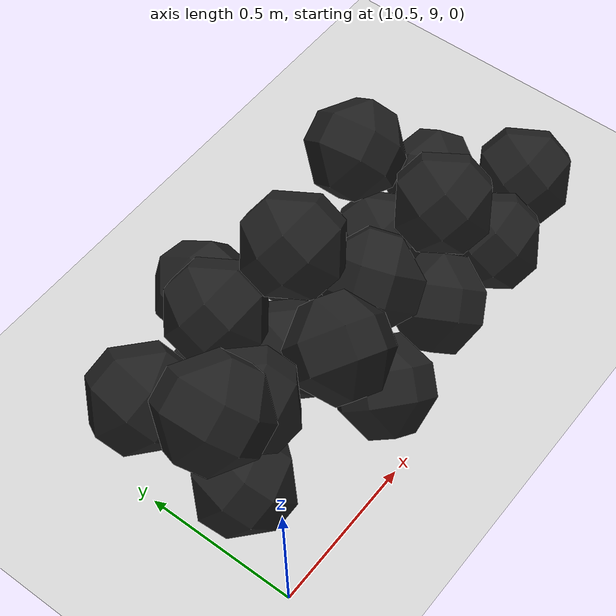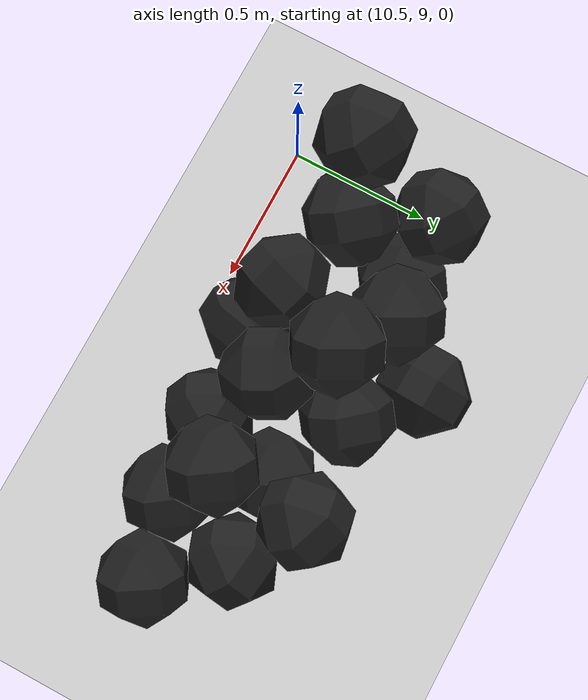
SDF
<sdf version="1.7">
 <world name="default">
  <model name="ground_plane">
   <static>1</static>
   <link name="link">
    <collision name="collision">
     <geometry><plane><normal>0 0 1</normal><size>100 100</size></plane></geometry>
     <surface><friction><ode><mu>100</mu><mu2>50</mu2></ode></friction></surface>
    </collision>
    <visual name="visual">
     <cast_shadows>0</cast_shadows>
     <geometry><plane><normal>0 0 1</normal><size>100 100</size></plane></geometry>
     <material>
      <script><uri>file://media/materials/scripts/gazebo.material</uri><name>Gazebo/Grey</name></script>
     </material>
    </visual>
   </link>
  </model>
  <model name="haoduomiantiaa_2">
   <link name="link_0">
    <inertial>
     <mass>0.2</mass>
     <inertia>
      <ixx>0.166667</ixx>
      <ixy>0</ixy>
      <ixz>0</ixz>
      <iyy>0.166667</iyy>
      <iyz>0</iyz>
      <izz>0.166667</izz>
     </inertia>
    </inertial>
    <visual name="visual">
     <geometry>
      <mesh>
       <uri>/home/lihaoyang/catkin_ws/src/pudong_gazebo/world/stl/haoduomianti.stl</uri>
       <scale>1 1 1</scale>
      </mesh>
     </geometry>
     <material>
      <lighting>1</lighting>
      <script><uri>file://media/materials/scripts/gazebo.material</uri><name>Gazebo/Black</name></script>
      <shader type="pixel"><normal_map>__default__</normal_map></shader>
      <ambient>0.3 0.3 0.3 1</ambient>
      <diffuse>0.7 0.7 0.7 1</diffuse>
      <specular>0.01 0.01 0.01 1</specular>
      <emissive>0 0 0 1</emissive>
     </material>
    </visual>
    <collision name="collision">
     <geometry>
      <mesh>
       <uri>/home/lihaoyang/catkin_ws/src/pudong_gazebo/world/stl/haoduomianti.stl</uri>
       <scale>1 1 1</scale>
      </mesh>
     </geometry>
     <surface>
      <friction>
       <ode><mu>1</mu><mu2>1</mu2><fdir1>0 0 0</fdir1><slip1>0</slip1><slip2>0</slip2></ode>
       <torsional>
        <coefficient>1</coefficient>
        <patch_radius>0</patch_radius>
        <surface_radius>0</surface_radius>
        <use_patch_radius>1</use_patch_radius>
        <ode><slip>0</slip></ode>
       </torsional>
      </friction>
      <bounce><restitution_coefficient>0</restitution_coefficient><threshold>1e+06</threshold></bounce>
      <contact>
       <collide_without_contact>0</collide_without_contact>
       <collide_without_contact_bitmask>1</collide_without_contact_bitmask>
       <collide_bitmask>1</collide_bitmask>
       <ode>
        <soft_cfm>0</soft_cfm>
        <soft_erp>0.2</soft_erp>
        <kp>1e+13</kp>
        <kd>1</kd>
        <max_vel>0.01</max_vel>
        <min_depth>0</min_depth>
       </ode>
       <bullet>
        <split_impulse>1</split_impulse>
        <split_impulse_penetration_threshold>-0.01</split_impulse_penetration_threshold>
        <soft_cfm>0</soft_cfm>
        <soft_erp>0.2</soft_erp>
        <kp>1e+13</kp>
        <kd>1</kd>
       </bullet>
      </contact>
     </surface>
    </collision>
   </link>
   <static>0</static>
   <pose>11.4856 9.19511 -0.115463 0.785415 -0.615376 0.493745</pose>
  </model>
  <model name="haoduomiantiaa_4">
   <link name="link_0">
    <inertial>
     <mass>0.2</mass>
     <inertia>
      <ixx>0.166667</ixx>
      <ixy>0</ixy>
      <ixz>0</ixz>
      <iyy>0.166667</iyy>
      <iyz>0</iyz>
      <izz>0.166667</izz>
     </inertia>
    </inertial>
    <visual name="visual">
     <geometry>
      <mesh>
       <uri>/home/lihaoyang/catkin_ws/src/pudong_gazebo/world/stl/haoduomianti.stl</uri>
       <scale>1 1 1</scale>
      </mesh>
     </geometry>
     <material>
      <lighting>1</lighting>
      <script><uri>file://media/materials/scripts/gazebo.material</uri><name>Gazebo/Black</name></script>
      <shader type="pixel"><normal_map>__default__</normal_map></shader>
      <ambient>0.3 0.3 0.3 1</ambient>
      <diffuse>0.7 0.7 0.7 1</diffuse>
      <specular>0.01 0.01 0.01 1</specular>
      <emissive>0 0 0 1</emissive>
     </material>
    </visual>
    <collision name="collision">
     <geometry>
      <mesh>
       <uri>/home/lihaoyang/catkin_ws/src/pudong_gazebo/world/stl/haoduomianti.stl</uri>
       <scale>1 1 1</scale>
      </mesh>
     </geometry>
     <surface>
      <friction>
       <ode><mu>1</mu><mu2>1</mu2><fdir1>0 0 0</fdir1><slip1>0</slip1><slip2>0</slip2></ode>
       <torsional>
        <coefficient>1</coefficient>
        <patch_radius>0</patch_radius>
        <surface_radius>0</surface_radius>
        <use_patch_radius>1</use_patch_radius>
        <ode><slip>0</slip></ode>
       </torsional>
      </friction>
      <bounce><restitution_coefficient>0</restitution_coefficient><threshold>1e+06</threshold></bounce>
      <contact>
       <collide_without_contact>0</collide_without_contact>
       <collide_without_contact_bitmask>1</collide_without_contact_bitmask>
       <collide_bitmask>1</collide_bitmask>
       <ode>
        <soft_cfm>0</soft_cfm>
        <soft_erp>0.2</soft_erp>
        <kp>1e+13</kp>
        <kd>1</kd>
        <max_vel>0.01</max_vel>
        <min_depth>0</min_depth>
       </ode>
       <bullet>
        <split_impulse>1</split_impulse>
        <split_impulse_penetration_threshold>-0.01</split_impulse_penetration_threshold>
        <soft_cfm>0</soft_cfm>
        <soft_erp>0.2</soft_erp>
        <kp>1e+13</kp>
        <kd>1</kd>
       </bullet>
      </contact>
     </surface>
    </collision>
   </link>
   <static>0</static>
   <pose>12.0559 9.27088 -0.114231 0.81709 -0.629953 1.58489</pose>
  </model>
  <model name="haoduomiantiaa_9">
   <link name="link_0">
    <inertial>
     <mass>0.2</mass>
     <inertia>
      <ixx>0.166667</ixx>
      <ixy>0</ixy>
      <ixz>0</ixz>
      <iyy>0.166667</iyy>
      <iyz>0</iyz>
      <izz>0.166667</izz>
     </inertia>
    </inertial>
    <visual name="visual">
     <geometry>
      <mesh>
       <uri>/home/lihaoyang/catkin_ws/src/pudong_gazebo/world/stl/haoduomianti.stl</uri>
       <scale>1 1 1</scale>
      </mesh>
     </geometry>
     <material>
      <lighting>1</lighting>
      <script><uri>file://media/materials/scripts/gazebo.material</uri><name>Gazebo/Black</name></script>
      <shader type="pixel"><normal_map>__default__</normal_map></shader>
      <ambient>0.3 0.3 0.3 1</ambient>
      <diffuse>0.7 0.7 0.7 1</diffuse>
      <specular>0.01 0.01 0.01 1</specular>
      <emissive>0 0 0 1</emissive>
     </material>
    </visual>
    <collision name="collision">
     <geometry>
      <mesh>
       <uri>/home/lihaoyang/catkin_ws/src/pudong_gazebo/world/stl/haoduomianti.stl</uri>
       <scale>1 1 1</scale>
      </mesh>
     </geometry>
     <surface>
      <friction>
       <ode><mu>1</mu><mu2>1</mu2><fdir1>0 0 0</fdir1><slip1>0</slip1><slip2>0</slip2></ode>
       <torsional>
        <coefficient>1</coefficient>
        <patch_radius>0</patch_radius>
        <surface_radius>0</surface_radius>
        <use_patch_radius>1</use_patch_radius>
        <ode><slip>0</slip></ode>
       </torsional>
      </friction>
      <bounce><restitution_coefficient>0</restitution_coefficient><threshold>1e+06</threshold></bounce>
      <contact>
       <collide_without_contact>0</collide_without_contact>
       <collide_without_contact_bitmask>1</collide_without_contact_bitmask>
       <collide_bitmask>1</collide_bitmask>
       <ode>
        <soft_cfm>0</soft_cfm>
        <soft_erp>0.2</soft_erp>
        <kp>1e+13</kp>
        <kd>1</kd>
        <max_vel>0.01</max_vel>
        <min_depth>0</min_depth>
       </ode>
       <bullet>
        <split_impulse>1</split_impulse>
        <split_impulse_penetration_threshold>-0.01</split_impulse_penetration_threshold>
        <soft_cfm>0</soft_cfm>
        <soft_erp>0.2</soft_erp>
        <kp>1e+13</kp>
        <kd>1</kd>
       </bullet>
      </contact>
     </surface>
    </collision>
   </link>
   <static>0</static>
   <pose>10.5462 9.26683 0.399541 0.802324 -0.551093 0.044751</pose>
  </model>
  <model name="haoduomiantiaa_16">
   <link name="link_0">
    <inertial>
     <mass>0.2</mass>
     <inertia>
      <ixx>0.166667</ixx>
      <ixy>0</ixy>
      <ixz>0</ixz>
      <iyy>0.166667</iyy>
      <iyz>0</iyz>
      <izz>0.166667</izz>
     </inertia>
    </inertial>
    <visual name="visual">
     <geometry>
      <mesh>
       <uri>/home/lihaoyang/catkin_ws/src/pudong_gazebo/world/stl/haoduomianti.stl</uri>
       <scale>1 1 1</scale>
      </mesh>
     </geometry>
     <material>
      <lighting>1</lighting>
      <script><uri>file://media/materials/scripts/gazebo.material</uri><name>Gazebo/Black</name></script>
      <shader type="pixel"><normal_map>__default__</normal_map></shader>
      <ambient>0.3 0.3 0.3 1</ambient>
      <diffuse>0.7 0.7 0.7 1</diffuse>
      <specular>0.01 0.01 0.01 1</specular>
      <emissive>0 0 0 1</emissive>
     </material>
    </visual>
    <collision name="collision">
     <geometry>
      <mesh>
       <uri>/home/lihaoyang/catkin_ws/src/pudong_gazebo/world/stl/haoduomianti.stl</uri>
       <scale>1 1 1</scale>
      </mesh>
     </geometry>
     <surface>
      <friction>
       <ode><mu>1</mu><mu2>1</mu2><fdir1>0 0 0</fdir1><slip1>0</slip1><slip2>0</slip2></ode>
       <torsional>
        <coefficient>1</coefficient>
        <patch_radius>0</patch_radius>
        <surface_radius>0</surface_radius>
        <use_patch_radius>1</use_patch_radius>
        <ode><slip>0</slip></ode>
       </torsional>
      </friction>
      <bounce><restitution_coefficient>0</restitution_coefficient><threshold>1e+06</threshold></bounce>
      <contact>
       <collide_without_contact>0</collide_without_contact>
       <collide_without_contact_bitmask>1</collide_without_contact_bitmask>
       <collide_bitmask>1</collide_bitmask>
       <ode>
        <soft_cfm>0</soft_cfm>
        <soft_erp>0.2</soft_erp>
        <kp>1e+13</kp>
        <kd>1</kd>
        <max_vel>0.01</max_vel>
        <min_depth>0</min_depth>
       </ode>
       <bullet>
        <split_impulse>1</split_impulse>
        <split_impulse_penetration_threshold>-0.01</split_impulse_penetration_threshold>
        <soft_cfm>0</soft_cfm>
        <soft_erp>0.2</soft_erp>
        <kp>1e+13</kp>
        <kd>1</kd>
       </bullet>
      </contact>
     </surface>
    </collision>
   </link>
   <static>0</static>
   <pose>11.3387 9.22321 0.111854 0.848237 -0.210651 2.0201</pose>
  </model>
  <model name="haoduomiantiaa_21">
   <link name="link_0">
    <inertial>
     <mass>0.2</mass>
     <inertia>
      <ixx>0.166667</ixx>
      <ixy>0</ixy>
      <ixz>0</ixz>
      <iyy>0.166667</iyy>
      <iyz>0</iyz>
      <izz>0.166667</izz>
     </inertia>
    </inertial>
    <visual name="visual">
     <geometry>
      <mesh>
       <uri>/home/lihaoyang/catkin_ws/src/pudong_gazebo/world/stl/haoduomianti.stl</uri>
       <scale>1 1 1</scale>
      </mesh>
     </geometry>
     <material>
      <lighting>1</lighting>
      <script><uri>file://media/materials/scripts/gazebo.material</uri><name>Gazebo/Black</name></script>
      <shader type="pixel"><normal_map>__default__</normal_map></shader>
      <ambient>0.3 0.3 0.3 1</ambient>
      <diffuse>0.7 0.7 0.7 1</diffuse>
      <specular>0.01 0.01 0.01 1</specular>
      <emissive>0 0 0 1</emissive>
     </material>
    </visual>
    <collision name="collision">
     <geometry>
      <mesh>
       <uri>/home/lihaoyang/catkin_ws/src/pudong_gazebo/world/stl/haoduomianti.stl</uri>
       <scale>1 1 1</scale>
      </mesh>
     </geometry>
     <surface>
      <friction>
       <ode><mu>1</mu><mu2>1</mu2><fdir1>0 0 0</fdir1><slip1>0</slip1><slip2>0</slip2></ode>
       <torsional>
        <coefficient>1</coefficient>
        <patch_radius>0</patch_radius>
        <surface_radius>0</surface_radius>
        <use_patch_radius>1</use_patch_radius>
        <ode><slip>0</slip></ode>
       </torsional>
      </friction>
      <bounce><restitution_coefficient>0</restitution_coefficient><threshold>1e+06</threshold></bounce>
      <contact>
       <collide_without_contact>0</collide_without_contact>
       <collide_without_contact_bitmask>1</collide_without_contact_bitmask>
       <collide_bitmask>1</collide_bitmask>
       <ode>
        <soft_cfm>0</soft_cfm>
        <soft_erp>0.2</soft_erp>
        <kp>1e+13</kp>
        <kd>1</kd>
        <max_vel>0.01</max_vel>
        <min_depth>0</min_depth>
       </ode>
       <bullet>
        <split_impulse>1</split_impulse>
        <split_impulse_penetration_threshold>-0.01</split_impulse_penetration_threshold>
        <soft_cfm>0</soft_cfm>
        <soft_erp>0.2</soft_erp>
        <kp>1e+13</kp>
        <kd>1</kd>
       </bullet>
      </contact>
     </surface>
    </collision>
   </link>
   <static>0</static>
   <pose>10.7791 9.33412 0.1643 0.846914 -0.466058 -2.4458</pose>
  </model>
  <model name="haoduomiantiaa_27">
   <link name="link_0">
    <inertial>
     <mass>0.2</mass>
     <inertia>
      <ixx>0.166667</ixx>
      <ixy>0</ixy>
      <ixz>0</ixz>
      <iyy>0.166667</iyy>
      <iyz>0</iyz>
      <izz>0.166667</izz>
     </inertia>
    </inertial>
    <visual name="visual">
     <geometry>
      <mesh>
       <uri>/home/lihaoyang/catkin_ws/src/pudong_gazebo/world/stl/haoduomianti.stl</uri>
       <scale>1 1 1</scale>
      </mesh>
     </geometry>
     <material>
      <lighting>1</lighting>
      <script><uri>file://media/materials/scripts/gazebo.material</uri><name>Gazebo/Black</name></script>
      <shader type="pixel"><normal_map>__default__</normal_map></shader>
      <ambient>0.3 0.3 0.3 1</ambient>
      <diffuse>0.7 0.7 0.7 1</diffuse>
      <specular>0.01 0.01 0.01 1</specular>
      <emissive>0 0 0 1</emissive>
     </material>
    </visual>
    <collision name="collision">
     <geometry>
      <mesh>
       <uri>/home/lihaoyang/catkin_ws/src/pudong_gazebo/world/stl/haoduomianti.stl</uri>
       <scale>1 1 1</scale>
      </mesh>
     </geometry>
     <surface>
      <friction>
       <ode><mu>1</mu><mu2>1</mu2><fdir1>0 0 0</fdir1><slip1>0</slip1><slip2>0</slip2></ode>
       <torsional>
        <coefficient>1</coefficient>
        <patch_radius>0</patch_radius>
        <surface_radius>0</surface_radius>
        <use_patch_radius>1</use_patch_radius>
        <ode><slip>0</slip></ode>
       </torsional>
      </friction>
      <bounce><restitution_coefficient>0</restitution_coefficient><threshold>1e+06</threshold></bounce>
      <contact>
       <collide_without_contact>0</collide_without_contact>
       <collide_without_contact_bitmask>1</collide_without_contact_bitmask>
       <collide_bitmask>1</collide_bitmask>
       <ode>
        <soft_cfm>0</soft_cfm>
        <soft_erp>0.2</soft_erp>
        <kp>1e+13</kp>
        <kd>1</kd>
        <max_vel>0.01</max_vel>
        <min_depth>0</min_depth>
       </ode>
       <bullet>
        <split_impulse>1</split_impulse>
        <split_impulse_penetration_threshold>-0.01</split_impulse_penetration_threshold>
        <soft_cfm>0</soft_cfm>
        <soft_erp>0.2</soft_erp>
        <kp>1e+13</kp>
        <kd>1</kd>
       </bullet>
      </contact>
     </surface>
    </collision>
   </link>
   <static>0</static>
   <pose>11.5589 9.48217 -0.112768 0.785365 -0.555444 -0.532487</pose>
  </model>
  <model name="haoduomiantiaa_30">
   <link name="link_0">
    <inertial>
     <mass>0.2</mass>
     <inertia>
      <ixx>0.166667</ixx>
      <ixy>0</ixy>
      <ixz>0</ixz>
      <iyy>0.166667</iyy>
      <iyz>0</iyz>
      <izz>0.166667</izz>
     </inertia>
    </inertial>
    <visual name="visual">
     <geometry>
      <mesh>
       <uri>/home/lihaoyang/catkin_ws/src/pudong_gazebo/world/stl/haoduomianti.stl</uri>
       <scale>1 1 1</scale>
      </mesh>
     </geometry>
     <material>
      <lighting>1</lighting>
      <script><uri>file://media/materials/scripts/gazebo.material</uri><name>Gazebo/Black</name></script>
      <shader type="pixel"><normal_map>__default__</normal_map></shader>
      <ambient>0.3 0.3 0.3 1</ambient>
      <diffuse>0.7 0.7 0.7 1</diffuse>
      <specular>0.01 0.01 0.01 1</specular>
      <emissive>0 0 0 1</emissive>
     </material>
    </visual>
    <collision name="collision">
     <geometry>
      <mesh>
       <uri>/home/lihaoyang/catkin_ws/src/pudong_gazebo/world/stl/haoduomianti.stl</uri>
       <scale>1 1 1</scale>
      </mesh>
     </geometry>
     <surface>
      <friction>
       <ode><mu>1</mu><mu2>1</mu2><fdir1>0 0 0</fdir1><slip1>0</slip1><slip2>0</slip2></ode>
       <torsional>
        <coefficient>1</coefficient>
        <patch_radius>0</patch_radius>
        <surface_radius>0</surface_radius>
        <use_patch_radius>1</use_patch_radius>
        <ode><slip>0</slip></ode>
       </torsional>
      </friction>
      <bounce><restitution_coefficient>0</restitution_coefficient><threshold>1e+06</threshold></bounce>
      <contact>
       <collide_without_contact>0</collide_without_contact>
       <collide_without_contact_bitmask>1</collide_without_contact_bitmask>
       <collide_bitmask>1</collide_bitmask>
       <ode>
        <soft_cfm>0</soft_cfm>
        <soft_erp>0.2</soft_erp>
        <kp>1e+13</kp>
        <kd>1</kd>
        <max_vel>0.01</max_vel>
        <min_depth>0</min_depth>
       </ode>
       <bullet>
        <split_impulse>1</split_impulse>
        <split_impulse_penetration_threshold>-0.01</split_impulse_penetration_threshold>
        <soft_cfm>0</soft_cfm>
        <soft_erp>0.2</soft_erp>
        <kp>1e+13</kp>
        <kd>1</kd>
       </bullet>
      </contact>
     </surface>
    </collision>
   </link>
   <static>0</static>
   <pose>11.6528 9.31681 0.115958 0.806735 -0.608359 -0.468213</pose>
  </model>
  <model name="haoduomiantiaa_32">
   <link name="link_0">
    <inertial>
     <mass>0.2</mass>
     <inertia>
      <ixx>0.166667</ixx>
      <ixy>0</ixy>
      <ixz>0</ixz>
      <iyy>0.166667</iyy>
      <iyz>0</iyz>
      <izz>0.166667</izz>
     </inertia>
    </inertial>
    <visual name="visual">
     <geometry>
      <mesh>
       <uri>/home/lihaoyang/catkin_ws/src/pudong_gazebo/world/stl/haoduomianti.stl</uri>
       <scale>1 1 1</scale>
      </mesh>
     </geometry>
     <material>
      <lighting>1</lighting>
      <script><uri>file://media/materials/scripts/gazebo.material</uri><name>Gazebo/Black</name></script>
      <shader type="pixel"><normal_map>__default__</normal_map></shader>
      <ambient>0.3 0.3 0.3 1</ambient>
      <diffuse>0.7 0.7 0.7 1</diffuse>
      <specular>0.01 0.01 0.01 1</specular>
      <emissive>0 0 0 1</emissive>
     </material>
    </visual>
    <collision name="collision">
     <geometry>
      <mesh>
       <uri>/home/lihaoyang/catkin_ws/src/pudong_gazebo/world/stl/haoduomianti.stl</uri>
       <scale>1 1 1</scale>
      </mesh>
     </geometry>
     <surface>
      <friction>
       <ode><mu>1</mu><mu2>1</mu2><fdir1>0 0 0</fdir1><slip1>0</slip1><slip2>0</slip2></ode>
       <torsional>
        <coefficient>1</coefficient>
        <patch_radius>0</patch_radius>
        <surface_radius>0</surface_radius>
        <use_patch_radius>1</use_patch_radius>
        <ode><slip>0</slip></ode>
       </torsional>
      </friction>
      <bounce><restitution_coefficient>0</restitution_coefficient><threshold>1e+06</threshold></bounce>
      <contact>
       <collide_without_contact>0</collide_without_contact>
       <collide_without_contact_bitmask>1</collide_without_contact_bitmask>
       <collide_bitmask>1</collide_bitmask>
       <ode>
        <soft_cfm>0</soft_cfm>
        <soft_erp>0.2</soft_erp>
        <kp>1e+13</kp>
        <kd>1</kd>
        <max_vel>0.01</max_vel>
        <min_depth>0</min_depth>
       </ode>
       <bullet>
        <split_impulse>1</split_impulse>
        <split_impulse_penetration_threshold>-0.01</split_impulse_penetration_threshold>
        <soft_cfm>0</soft_cfm>
        <soft_erp>0.2</soft_erp>
        <kp>1e+13</kp>
        <kd>1</kd>
       </bullet>
      </contact>
     </surface>
    </collision>
   </link>
   <static>0</static>
   <pose>11.1452 9.14925 -0.115596 0.785313 -0.615457 -1.25457</pose>
  </model>
  <model name="haoduomiantiaa_36">
   <link name="link_0">
    <inertial>
     <mass>0.2</mass>
     <inertia>
      <ixx>0.166667</ixx>
      <ixy>0</ixy>
      <ixz>0</ixz>
      <iyy>0.166667</iyy>
      <iyz>0</iyz>
      <izz>0.166667</izz>
     </inertia>
    </inertial>
    <visual name="visual">
     <geometry>
      <mesh>
       <uri>/home/lihaoyang/catkin_ws/src/pudong_gazebo/world/stl/haoduomianti.stl</uri>
       <scale>1 1 1</scale>
      </mesh>
     </geometry>
     <material>
      <lighting>1</lighting>
      <script><uri>file://media/materials/scripts/gazebo.material</uri><name>Gazebo/Black</name></script>
      <shader type="pixel"><normal_map>__default__</normal_map></shader>
      <ambient>0.3 0.3 0.3 1</ambient>
      <diffuse>0.7 0.7 0.7 1</diffuse>
      <specular>0.01 0.01 0.01 1</specular>
      <emissive>0 0 0 1</emissive>
     </material>
    </visual>
    <collision name="collision">
     <geometry>
      <mesh>
       <uri>/home/lihaoyang/catkin_ws/src/pudong_gazebo/world/stl/haoduomianti.stl</uri>
       <scale>1 1 1</scale>
      </mesh>
     </geometry>
     <surface>
      <friction>
       <ode><mu>1</mu><mu2>1</mu2><fdir1>0 0 0</fdir1><slip1>0</slip1><slip2>0</slip2></ode>
       <torsional>
        <coefficient>1</coefficient>
        <patch_radius>0</patch_radius>
        <surface_radius>0</surface_radius>
        <use_patch_radius>1</use_patch_radius>
        <ode><slip>0</slip></ode>
       </torsional>
      </friction>
      <bounce><restitution_coefficient>0</restitution_coefficient><threshold>1e+06</threshold></bounce>
      <contact>
       <collide_without_contact>0</collide_without_contact>
       <collide_without_contact_bitmask>1</collide_without_contact_bitmask>
       <collide_bitmask>1</collide_bitmask>
       <ode>
        <soft_cfm>0</soft_cfm>
        <soft_erp>0.2</soft_erp>
        <kp>1e+13</kp>
        <kd>1</kd>
        <max_vel>0.01</max_vel>
        <min_depth>0</min_depth>
       </ode>
       <bullet>
        <split_impulse>1</split_impulse>
        <split_impulse_penetration_threshold>-0.01</split_impulse_penetration_threshold>
        <soft_cfm>0</soft_cfm>
        <soft_erp>0.2</soft_erp>
        <kp>1e+13</kp>
        <kd>1</kd>
       </bullet>
      </contact>
     </surface>
    </collision>
   </link>
   <static>0</static>
   <pose>11.1644 9.46851 0.289647 0.871691 -0.62343 -2.69083</pose>
  </model>
  <model name="haoduomiantiaa_44">
   <link name="link_0">
    <inertial>
     <mass>0.2</mass>
     <inertia>
      <ixx>0.166667</ixx>
      <ixy>0</ixy>
      <ixz>0</ixz>
      <iyy>0.166667</iyy>
      <iyz>0</iyz>
      <izz>0.166667</izz>
     </inertia>
    </inertial>
    <visual name="visual">
     <geometry>
      <mesh>
       <uri>/home/lihaoyang/catkin_ws/src/pudong_gazebo/world/stl/haoduomianti.stl</uri>
       <scale>1 1 1</scale>
      </mesh>
     </geometry>
     <material>
      <lighting>1</lighting>
      <script><uri>file://media/materials/scripts/gazebo.material</uri><name>Gazebo/Black</name></script>
      <shader type="pixel"><normal_map>__default__</normal_map></shader>
      <ambient>0.3 0.3 0.3 1</ambient>
      <diffuse>0.7 0.7 0.7 1</diffuse>
      <specular>0.01 0.01 0.01 1</specular>
      <emissive>0 0 0 1</emissive>
     </material>
    </visual>
    <collision name="collision">
     <geometry>
      <mesh>
       <uri>/home/lihaoyang/catkin_ws/src/pudong_gazebo/world/stl/haoduomianti.stl</uri>
       <scale>1 1 1</scale>
      </mesh>
     </geometry>
     <surface>
      <friction>
       <ode><mu>1</mu><mu2>1</mu2><fdir1>0 0 0</fdir1><slip1>0</slip1><slip2>0</slip2></ode>
       <torsional>
        <coefficient>1</coefficient>
        <patch_radius>0</patch_radius>
        <surface_radius>0</surface_radius>
        <use_patch_radius>1</use_patch_radius>
        <ode><slip>0</slip></ode>
       </torsional>
      </friction>
      <bounce><restitution_coefficient>0</restitution_coefficient><threshold>1e+06</threshold></bounce>
      <contact>
       <collide_without_contact>0</collide_without_contact>
       <collide_without_contact_bitmask>1</collide_without_contact_bitmask>
       <collide_bitmask>1</collide_bitmask>
       <ode>
        <soft_cfm>0</soft_cfm>
        <soft_erp>0.2</soft_erp>
        <kp>1e+13</kp>
        <kd>1</kd>
        <max_vel>0.01</max_vel>
        <min_depth>0</min_depth>
       </ode>
       <bullet>
        <split_impulse>1</split_impulse>
        <split_impulse_penetration_threshold>-0.01</split_impulse_penetration_threshold>
        <soft_cfm>0</soft_cfm>
        <soft_erp>0.2</soft_erp>
        <kp>1e+13</kp>
        <kd>1</kd>
       </bullet>
      </contact>
     </surface>
    </collision>
   </link>
   <static>0</static>
   <pose>11.874 9.49721 -0.115479 0.785413 -0.615488 2.48975</pose>
  </model>
  <model name="haoduomiantiaa_45">
   <link name="link_0">
    <inertial>
     <mass>0.2</mass>
     <inertia>
      <ixx>0.166667</ixx>
      <ixy>0</ixy>
      <ixz>0</ixz>
      <iyy>0.166667</iyy>
      <iyz>0</iyz>
      <izz>0.166667</izz>
     </inertia>
    </inertial>
    <visual name="visual">
     <geometry>
      <mesh>
       <uri>/home/lihaoyang/catkin_ws/src/pudong_gazebo/world/stl/haoduomianti.stl</uri>
       <scale>1 1 1</scale>
      </mesh>
     </geometry>
     <material>
      <lighting>1</lighting>
      <script><uri>file://media/materials/scripts/gazebo.material</uri><name>Gazebo/Black</name></script>
      <shader type="pixel"><normal_map>__default__</normal_map></shader>
      <ambient>0.3 0.3 0.3 1</ambient>
      <diffuse>0.7 0.7 0.7 1</diffuse>
      <specular>0.01 0.01 0.01 1</specular>
      <emissive>0 0 0 1</emissive>
     </material>
    </visual>
    <collision name="collision">
     <geometry>
      <mesh>
       <uri>/home/lihaoyang/catkin_ws/src/pudong_gazebo/world/stl/haoduomianti.stl</uri>
       <scale>1 1 1</scale>
      </mesh>
     </geometry>
     <surface>
      <friction>
       <ode><mu>1</mu><mu2>1</mu2><fdir1>0 0 0</fdir1><slip1>0</slip1><slip2>0</slip2></ode>
       <torsional>
        <coefficient>1</coefficient>
        <patch_radius>0</patch_radius>
        <surface_radius>0</surface_radius>
        <use_patch_radius>1</use_patch_radius>
        <ode><slip>0</slip></ode>
       </torsional>
      </friction>
      <bounce><restitution_coefficient>0</restitution_coefficient><threshold>1e+06</threshold></bounce>
      <contact>
       <collide_without_contact>0</collide_without_contact>
       <collide_without_contact_bitmask>1</collide_without_contact_bitmask>
       <collide_bitmask>1</collide_bitmask>
       <ode>
        <soft_cfm>0</soft_cfm>
        <soft_erp>0.2</soft_erp>
        <kp>1e+13</kp>
        <kd>1</kd>
        <max_vel>0.01</max_vel>
        <min_depth>0</min_depth>
       </ode>
       <bullet>
        <split_impulse>1</split_impulse>
        <split_impulse_penetration_threshold>-0.01</split_impulse_penetration_threshold>
        <soft_cfm>0</soft_cfm>
        <soft_erp>0.2</soft_erp>
        <kp>1e+13</kp>
        <kd>1</kd>
       </bullet>
      </contact>
     </surface>
    </collision>
   </link>
   <static>0</static>
   <pose>10.7696 9.55249 -0.114687 0.809202 -0.626473 1.65599</pose>
  </model>
  <model name="haoduomiantiaa_47">
   <link name="link_0">
    <inertial>
     <mass>0.2</mass>
     <inertia>
      <ixx>0.166667</ixx>
      <ixy>0</ixy>
      <ixz>0</ixz>
      <iyy>0.166667</iyy>
      <iyz>0</iyz>
      <izz>0.166667</izz>
     </inertia>
    </inertial>
    <visual name="visual">
     <geometry>
      <mesh>
       <uri>/home/lihaoyang/catkin_ws/src/pudong_gazebo/world/stl/haoduomianti.stl</uri>
       <scale>1 1 1</scale>
      </mesh>
     </geometry>
     <material>
      <lighting>1</lighting>
      <script><uri>file://media/materials/scripts/gazebo.material</uri><name>Gazebo/Black</name></script>
      <shader type="pixel"><normal_map>__default__</normal_map></shader>
      <ambient>0.3 0.3 0.3 1</ambient>
      <diffuse>0.7 0.7 0.7 1</diffuse>
      <specular>0.01 0.01 0.01 1</specular>
      <emissive>0 0 0 1</emissive>
     </material>
    </visual>
    <collision name="collision">
     <geometry>
      <mesh>
       <uri>/home/lihaoyang/catkin_ws/src/pudong_gazebo/world/stl/haoduomianti.stl</uri>
       <scale>1 1 1</scale>
      </mesh>
     </geometry>
     <surface>
      <friction>
       <ode><mu>1</mu><mu2>1</mu2><fdir1>0 0 0</fdir1><slip1>0</slip1><slip2>0</slip2></ode>
       <torsional>
        <coefficient>1</coefficient>
        <patch_radius>0</patch_radius>
        <surface_radius>0</surface_radius>
        <use_patch_radius>1</use_patch_radius>
        <ode><slip>0</slip></ode>
       </torsional>
      </friction>
      <bounce><restitution_coefficient>0</restitution_coefficient><threshold>1e+06</threshold></bounce>
      <contact>
       <collide_without_contact>0</collide_without_contact>
       <collide_without_contact_bitmask>1</collide_without_contact_bitmask>
       <collide_bitmask>1</collide_bitmask>
       <ode>
        <soft_cfm>0</soft_cfm>
        <soft_erp>0.2</soft_erp>
        <kp>1e+13</kp>
        <kd>1</kd>
        <max_vel>0.01</max_vel>
        <min_depth>0</min_depth>
       </ode>
       <bullet>
        <split_impulse>1</split_impulse>
        <split_impulse_penetration_threshold>-0.01</split_impulse_penetration_threshold>
        <soft_cfm>0</soft_cfm>
        <soft_erp>0.2</soft_erp>
        <kp>1e+13</kp>
        <kd>1</kd>
       </bullet>
      </contact>
     </surface>
    </collision>
   </link>
   <static>0</static>
   <pose>11.3487 9.60286 0.010894 0.846587 -0.806847 -0.350062</pose>
  </model>
  <model name="haoduomiantiaa_51">
   <link name="link_0">
    <inertial>
     <mass>0.2</mass>
     <inertia>
      <ixx>0.166667</ixx>
      <ixy>0</ixy>
      <ixz>0</ixz>
      <iyy>0.166667</iyy>
      <iyz>0</iyz>
      <izz>0.166667</izz>
     </inertia>
    </inertial>
    <visual name="visual">
     <geometry>
      <mesh>
       <uri>/home/lihaoyang/catkin_ws/src/pudong_gazebo/world/stl/haoduomianti.stl</uri>
       <scale>1 1 1</scale>
      </mesh>
     </geometry>
     <material>
      <lighting>1</lighting>
      <script><uri>file://media/materials/scripts/gazebo.material</uri><name>Gazebo/Black</name></script>
      <shader type="pixel"><normal_map>__default__</normal_map></shader>
      <ambient>0.3 0.3 0.3 1</ambient>
      <diffuse>0.7 0.7 0.7 1</diffuse>
      <specular>0.01 0.01 0.01 1</specular>
      <emissive>0 0 0 1</emissive>
     </material>
    </visual>
    <collision name="collision">
     <geometry>
      <mesh>
       <uri>/home/lihaoyang/catkin_ws/src/pudong_gazebo/world/stl/haoduomianti.stl</uri>
       <scale>1 1 1</scale>
      </mesh>
     </geometry>
     <surface>
      <friction>
       <ode><mu>1</mu><mu2>1</mu2><fdir1>0 0 0</fdir1><slip1>0</slip1><slip2>0</slip2></ode>
       <torsional>
        <coefficient>1</coefficient>
        <patch_radius>0</patch_radius>
        <surface_radius>0</surface_radius>
        <use_patch_radius>1</use_patch_radius>
        <ode><slip>0</slip></ode>
       </torsional>
      </friction>
      <bounce><restitution_coefficient>0</restitution_coefficient><threshold>1e+06</threshold></bounce>
      <contact>
       <collide_without_contact>0</collide_without_contact>
       <collide_without_contact_bitmask>1</collide_without_contact_bitmask>
       <collide_bitmask>1</collide_bitmask>
       <ode>
        <soft_cfm>0</soft_cfm>
        <soft_erp>0.2</soft_erp>
        <kp>1e+13</kp>
        <kd>1</kd>
        <max_vel>0.01</max_vel>
        <min_depth>0</min_depth>
       </ode>
       <bullet>
        <split_impulse>1</split_impulse>
        <split_impulse_penetration_threshold>-0.01</split_impulse_penetration_threshold>
        <soft_cfm>0</soft_cfm>
        <soft_erp>0.2</soft_erp>
        <kp>1e+13</kp>
        <kd>1</kd>
       </bullet>
      </contact>
     </surface>
    </collision>
   </link>
   <static>0</static>
   <pose>11.7809 9.20052 -0.115503 0.78549 -0.615514 1.66257</pose>
  </model>
  <model name="haoduomiantiaa_54">
   <link name="link_0">
    <inertial>
     <mass>0.2</mass>
     <inertia>
      <ixx>0.166667</ixx>
      <ixy>0</ixy>
      <ixz>0</ixz>
      <iyy>0.166667</iyy>
      <iyz>0</iyz>
      <izz>0.166667</izz>
     </inertia>
    </inertial>
    <visual name="visual">
     <geometry>
      <mesh>
       <uri>/home/lihaoyang/catkin_ws/src/pudong_gazebo/world/stl/haoduomianti.stl</uri>
       <scale>1 1 1</scale>
      </mesh>
     </geometry>
     <material>
      <lighting>1</lighting>
      <script><uri>file://media/materials/scripts/gazebo.material</uri><name>Gazebo/Black</name></script>
      <shader type="pixel"><normal_map>__default__</normal_map></shader>
      <ambient>0.3 0.3 0.3 1</ambient>
      <diffuse>0.7 0.7 0.7 1</diffuse>
      <specular>0.01 0.01 0.01 1</specular>
      <emissive>0 0 0 1</emissive>
     </material>
    </visual>
    <collision name="collision">
     <geometry>
      <mesh>
       <uri>/home/lihaoyang/catkin_ws/src/pudong_gazebo/world/stl/haoduomianti.stl</uri>
       <scale>1 1 1</scale>
      </mesh>
     </geometry>
     <surface>
      <friction>
       <ode><mu>1</mu><mu2>1</mu2><fdir1>0 0 0</fdir1><slip1>0</slip1><slip2>0</slip2></ode>
       <torsional>
        <coefficient>1</coefficient>
        <patch_radius>0</patch_radius>
        <surface_radius>0</surface_radius>
        <use_patch_radius>1</use_patch_radius>
        <ode><slip>0</slip></ode>
       </torsional>
      </friction>
      <bounce><restitution_coefficient>0</restitution_coefficient><threshold>1e+06</threshold></bounce>
      <contact>
       <collide_without_contact>0</collide_without_contact>
       <collide_without_contact_bitmask>1</collide_without_contact_bitmask>
       <collide_bitmask>1</collide_bitmask>
       <ode>
        <soft_cfm>0</soft_cfm>
        <soft_erp>0.2</soft_erp>
        <kp>1e+13</kp>
        <kd>1</kd>
        <max_vel>0.01</max_vel>
        <min_depth>0</min_depth>
       </ode>
       <bullet>
        <split_impulse>1</split_impulse>
        <split_impulse_penetration_threshold>-0.01</split_impulse_penetration_threshold>
        <soft_cfm>0</soft_cfm>
        <soft_erp>0.2</soft_erp>
        <kp>1e+13</kp>
        <kd>1</kd>
       </bullet>
      </contact>
     </surface>
    </collision>
   </link>
   <static>0</static>
   <pose>11.6269 9.65475 0.116337 0.916056 -0.720125 2.17661</pose>
  </model>
  <model name="haoduomiantiaa_64">
   <link name="link_0">
    <inertial>
     <mass>0.2</mass>
     <inertia>
      <ixx>0.166667</ixx>
      <ixy>0</ixy>
      <ixz>0</ixz>
      <iyy>0.166667</iyy>
      <iyz>0</iyz>
      <izz>0.166667</izz>
     </inertia>
    </inertial>
    <visual name="visual">
     <geometry>
      <mesh>
       <uri>/home/lihaoyang/catkin_ws/src/pudong_gazebo/world/stl/haoduomianti.stl</uri>
       <scale>1 1 1</scale>
      </mesh>
     </geometry>
     <material>
      <lighting>1</lighting>
      <script><uri>file://media/materials/scripts/gazebo.material</uri><name>Gazebo/Black</name></script>
      <shader type="pixel"><normal_map>__default__</normal_map></shader>
      <ambient>0.3 0.3 0.3 1</ambient>
      <diffuse>0.7 0.7 0.7 1</diffuse>
      <specular>0.01 0.01 0.01 1</specular>
      <emissive>0 0 0 1</emissive>
     </material>
    </visual>
    <collision name="collision">
     <geometry>
      <mesh>
       <uri>/home/lihaoyang/catkin_ws/src/pudong_gazebo/world/stl/haoduomianti.stl</uri>
       <scale>1 1 1</scale>
      </mesh>
     </geometry>
     <surface>
      <friction>
       <ode><mu>1</mu><mu2>1</mu2><fdir1>0 0 0</fdir1><slip1>0</slip1><slip2>0</slip2></ode>
       <torsional>
        <coefficient>1</coefficient>
        <patch_radius>0</patch_radius>
        <surface_radius>0</surface_radius>
        <use_patch_radius>1</use_patch_radius>
        <ode><slip>0</slip></ode>
       </torsional>
      </friction>
      <bounce><restitution_coefficient>0</restitution_coefficient><threshold>1e+06</threshold></bounce>
      <contact>
       <collide_without_contact>0</collide_without_contact>
       <collide_without_contact_bitmask>1</collide_without_contact_bitmask>
       <collide_bitmask>1</collide_bitmask>
       <ode>
        <soft_cfm>0</soft_cfm>
        <soft_erp>0.2</soft_erp>
        <kp>1e+13</kp>
        <kd>1</kd>
        <max_vel>0.01</max_vel>
        <min_depth>0</min_depth>
       </ode>
       <bullet>
        <split_impulse>1</split_impulse>
        <split_impulse_penetration_threshold>-0.01</split_impulse_penetration_threshold>
        <soft_cfm>0</soft_cfm>
        <soft_erp>0.2</soft_erp>
        <kp>1e+13</kp>
        <kd>1</kd>
       </bullet>
      </contact>
     </surface>
    </collision>
   </link>
   <static>0</static>
   <pose>10.9459 9.58671 0.114385 0.736194 -0.65689 -0.499576</pose>
  </model>
  <model name="haoduomiantiaa_71">
   <link name="link_0">
    <inertial>
     <mass>0.2</mass>
     <inertia>
      <ixx>0.166667</ixx>
      <ixy>0</ixy>
      <ixz>0</ixz>
      <iyy>0.166667</iyy>
      <iyz>0</iyz>
      <izz>0.166667</izz>
     </inertia>
    </inertial>
    <visual name="visual">
     <geometry>
      <mesh>
       <uri>/home/lihaoyang/catkin_ws/src/pudong_gazebo/world/stl/haoduomianti.stl</uri>
       <scale>1 1 1</scale>
      </mesh>
     </geometry>
     <material>
      <lighting>1</lighting>
      <script><uri>file://media/materials/scripts/gazebo.material</uri><name>Gazebo/Black</name></script>
      <shader type="pixel"><normal_map>__default__</normal_map></shader>
      <ambient>0.3 0.3 0.3 1</ambient>
      <diffuse>0.7 0.7 0.7 1</diffuse>
      <specular>0.01 0.01 0.01 1</specular>
      <emissive>0 0 0 1</emissive>
     </material>
    </visual>
    <collision name="collision">
     <geometry>
      <mesh>
       <uri>/home/lihaoyang/catkin_ws/src/pudong_gazebo/world/stl/haoduomianti.stl</uri>
       <scale>1 1 1</scale>
      </mesh>
     </geometry>
     <surface>
      <friction>
       <ode><mu>1</mu><mu2>1</mu2><fdir1>0 0 0</fdir1><slip1>0</slip1><slip2>0</slip2></ode>
       <torsional>
        <coefficient>1</coefficient>
        <patch_radius>0</patch_radius>
        <surface_radius>0</surface_radius>
        <use_patch_radius>1</use_patch_radius>
        <ode><slip>0</slip></ode>
       </torsional>
      </friction>
      <bounce><restitution_coefficient>0</restitution_coefficient><threshold>1e+06</threshold></bounce>
      <contact>
       <collide_without_contact>0</collide_without_contact>
       <collide_without_contact_bitmask>1</collide_without_contact_bitmask>
       <collide_bitmask>1</collide_bitmask>
       <ode>
        <soft_cfm>0</soft_cfm>
        <soft_erp>0.2</soft_erp>
        <kp>1e+13</kp>
        <kd>1</kd>
        <max_vel>0.01</max_vel>
        <min_depth>0</min_depth>
       </ode>
       <bullet>
        <split_impulse>1</split_impulse>
        <split_impulse_penetration_threshold>-0.01</split_impulse_penetration_threshold>
        <soft_cfm>0</soft_cfm>
        <soft_erp>0.2</soft_erp>
        <kp>1e+13</kp>
        <kd>1</kd>
       </bullet>
      </contact>
     </surface>
    </collision>
   </link>
   <static>0</static>
   <pose>10.5565 9.59883 0.128485 0.885733 -0.471816 -0.156457</pose>
  </model>
  <model name="haoduomiantiaa_80">
   <link name="link_0">
    <inertial>
     <mass>0.2</mass>
     <inertia>
      <ixx>0.166667</ixx>
      <ixy>0</ixy>
      <ixz>0</ixz>
      <iyy>0.166667</iyy>
      <iyz>0</iyz>
      <izz>0.166667</izz>
     </inertia>
    </inertial>
    <visual name="visual">
     <geometry>
      <mesh>
       <uri>/home/lihaoyang/catkin_ws/src/pudong_gazebo/world/stl/haoduomianti.stl</uri>
       <scale>1 1 1</scale>
      </mesh>
     </geometry>
     <material>
      <lighting>1</lighting>
      <script><uri>file://media/materials/scripts/gazebo.material</uri><name>Gazebo/Black</name></script>
      <shader type="pixel"><normal_map>__default__</normal_map></shader>
      <ambient>0.3 0.3 0.3 1</ambient>
      <diffuse>0.7 0.7 0.7 1</diffuse>
      <specular>0.01 0.01 0.01 1</specular>
      <emissive>0 0 0 1</emissive>
     </material>
    </visual>
    <collision name="collision">
     <geometry>
      <mesh>
       <uri>/home/lihaoyang/catkin_ws/src/pudong_gazebo/world/stl/haoduomianti.stl</uri>
       <scale>1 1 1</scale>
      </mesh>
     </geometry>
     <surface>
      <friction>
       <ode><mu>1</mu><mu2>1</mu2><fdir1>0 0 0</fdir1><slip1>0</slip1><slip2>0</slip2></ode>
       <torsional>
        <coefficient>1</coefficient>
        <patch_radius>0</patch_radius>
        <surface_radius>0</surface_radius>
        <use_patch_radius>1</use_patch_radius>
        <ode><slip>0</slip></ode>
       </torsional>
      </friction>
      <bounce><restitution_coefficient>0</restitution_coefficient><threshold>1e+06</threshold></bounce>
      <contact>
       <collide_without_contact>0</collide_without_contact>
       <collide_without_contact_bitmask>1</collide_without_contact_bitmask>
       <collide_bitmask>1</collide_bitmask>
       <ode>
        <soft_cfm>0</soft_cfm>
        <soft_erp>0.2</soft_erp>
        <kp>1e+13</kp>
        <kd>1</kd>
        <max_vel>0.01</max_vel>
        <min_depth>0</min_depth>
       </ode>
       <bullet>
        <split_impulse>1</split_impulse>
        <split_impulse_penetration_threshold>-0.01</split_impulse_penetration_threshold>
        <soft_cfm>0</soft_cfm>
        <soft_erp>0.2</soft_erp>
        <kp>1e+13</kp>
        <kd>1</kd>
       </bullet>
      </contact>
     </surface>
    </collision>
   </link>
   <static>0</static>
   <pose>11.1947 9.66448 -0.035531 0.179369 -0.17854 1.49795</pose>
  </model>
  <model name="haoduomiantiaa_91">
   <link name="link_0">
    <inertial>
     <mass>0.2</mass>
     <inertia>
      <ixx>0.166667</ixx>
      <ixy>0</ixy>
      <ixz>0</ixz>
      <iyy>0.166667</iyy>
      <iyz>0</iyz>
      <izz>0.166667</izz>
     </inertia>
    </inertial>
    <visual name="visual">
     <geometry>
      <mesh>
       <uri>/home/lihaoyang/catkin_ws/src/pudong_gazebo/world/stl/haoduomianti.stl</uri>
       <scale>1 1 1</scale>
      </mesh>
     </geometry>
     <material>
      <lighting>1</lighting>
      <script><uri>file://media/materials/scripts/gazebo.material</uri><name>Gazebo/Black</name></script>
      <shader type="pixel"><normal_map>__default__</normal_map></shader>
      <ambient>0.3 0.3 0.3 1</ambient>
      <diffuse>0.7 0.7 0.7 1</diffuse>
      <specular>0.01 0.01 0.01 1</specular>
      <emissive>0 0 0 1</emissive>
     </material>
    </visual>
    <collision name="collision">
     <geometry>
      <mesh>
       <uri>/home/lihaoyang/catkin_ws/src/pudong_gazebo/world/stl/haoduomianti.stl</uri>
       <scale>1 1 1</scale>
      </mesh>
     </geometry>
     <surface>
      <friction>
       <ode><mu>1</mu><mu2>1</mu2><fdir1>0 0 0</fdir1><slip1>0</slip1><slip2>0</slip2></ode>
       <torsional>
        <coefficient>1</coefficient>
        <patch_radius>0</patch_radius>
        <surface_radius>0</surface_radius>
        <use_patch_radius>1</use_patch_radius>
        <ode><slip>0</slip></ode>
       </torsional>
      </friction>
      <bounce><restitution_coefficient>0</restitution_coefficient><threshold>1e+06</threshold></bounce>
      <contact>
       <collide_without_contact>0</collide_without_contact>
       <collide_without_contact_bitmask>1</collide_without_contact_bitmask>
       <collide_bitmask>1</collide_bitmask>
       <ode>
        <soft_cfm>0</soft_cfm>
        <soft_erp>0.2</soft_erp>
        <kp>1e+13</kp>
        <kd>1</kd>
        <max_vel>0.01</max_vel>
        <min_depth>0</min_depth>
       </ode>
       <bullet>
        <split_impulse>1</split_impulse>
        <split_impulse_penetration_threshold>-0.01</split_impulse_penetration_threshold>
        <soft_cfm>0</soft_cfm>
        <soft_erp>0.2</soft_erp>
        <kp>1e+13</kp>
        <kd>1</kd>
       </bullet>
      </contact>
     </surface>
    </collision>
   </link>
   <static>0</static>
   <pose>11.0699 9.45885 -0.115027 0.785465 -0.615158 1.82529</pose>
  </model>
  <model name="haoduomiantiaa_115">
   <link name="link_0">
    <inertial>
     <mass>0.2</mass>
     <inertia>
      <ixx>0.166667</ixx>
      <ixy>0</ixy>
      <ixz>0</ixz>
      <iyy>0.166667</iyy>
      <iyz>0</iyz>
      <izz>0.166667</izz>
     </inertia>
    </inertial>
    <visual name="visual">
     <geometry>
      <mesh>
       <uri>/home/lihaoyang/catkin_ws/src/pudong_gazebo/world/stl/haoduomianti.stl</uri>
       <scale>1 1 1</scale>
      </mesh>
     </geometry>
     <material>
      <lighting>1</lighting>
      <script><uri>file://media/materials/scripts/gazebo.material</uri><name>Gazebo/Black</name></script>
      <shader type="pixel"><normal_map>__default__</normal_map></shader>
      <ambient>0.3 0.3 0.3 1</ambient>
      <diffuse>0.7 0.7 0.7 1</diffuse>
      <specular>0.01 0.01 0.01 1</specular>
      <emissive>0 0 0 1</emissive>
     </material>
    </visual>
    <collision name="collision">
     <geometry>
      <mesh>
       <uri>/home/lihaoyang/catkin_ws/src/pudong_gazebo/world/stl/haoduomianti.stl</uri>
       <scale>1 1 1</scale>
      </mesh>
     </geometry>
     <surface>
      <friction>
       <ode><mu>1</mu><mu2>1</mu2><fdir1>0 0 0</fdir1><slip1>0</slip1><slip2>0</slip2></ode>
       <torsional>
        <coefficient>1</coefficient>
        <patch_radius>0</patch_radius>
        <surface_radius>0</surface_radius>
        <use_patch_radius>1</use_patch_radius>
        <ode><slip>0</slip></ode>
       </torsional>
      </friction>
      <bounce><restitution_coefficient>0</restitution_coefficient><threshold>1e+06</threshold></bounce>
      <contact>
       <collide_without_contact>0</collide_without_contact>
       <collide_without_contact_bitmask>1</collide_without_contact_bitmask>
       <collide_bitmask>1</collide_bitmask>
       <ode>
        <soft_cfm>0</soft_cfm>
        <soft_erp>0.2</soft_erp>
        <kp>1e+13</kp>
        <kd>1</kd>
        <max_vel>0.01</max_vel>
        <min_depth>0</min_depth>
       </ode>
       <bullet>
        <split_impulse>1</split_impulse>
        <split_impulse_penetration_threshold>-0.01</split_impulse_penetration_threshold>
        <soft_cfm>0</soft_cfm>
        <soft_erp>0.2</soft_erp>
        <kp>1e+13</kp>
        <kd>1</kd>
       </bullet>
      </contact>
     </surface>
    </collision>
   </link>
   <static>0</static>
   <pose>11.0969 9.14994 0.176884 1.02328 -0.282345 2.80448</pose>
  </model>
  <model name="haoduomiantiaa_117">
   <link name="link_0">
    <inertial>
     <mass>0.2</mass>
     <inertia>
      <ixx>0.166667</ixx>
      <ixy>0</ixy>
      <ixz>0</ixz>
      <iyy>0.166667</iyy>
      <iyz>0</iyz>
      <izz>0.166667</izz>
     </inertia>
    </inertial>
    <visual name="visual">
     <geometry>
      <mesh>
       <uri>/home/lihaoyang/catkin_ws/src/pudong_gazebo/world/stl/haoduomianti.stl</uri>
       <scale>1 1 1</scale>
      </mesh>
     </geometry>
     <material>
      <lighting>1</lighting>
      <script><uri>file://media/materials/scripts/gazebo.material</uri><name>Gazebo/Black</name></script>
      <shader type="pixel"><normal_map>__default__</normal_map></shader>
      <ambient>0.3 0.3 0.3 1</ambient>
      <diffuse>0.7 0.7 0.7 1</diffuse>
      <specular>0.01 0.01 0.01 1</specular>
      <emissive>0 0 0 1</emissive>
     </material>
    </visual>
    <collision name="collision">
     <geometry>
      <mesh>
       <uri>/home/lihaoyang/catkin_ws/src/pudong_gazebo/world/stl/haoduomianti.stl</uri>
       <scale>1 1 1</scale>
      </mesh>
     </geometry>
     <surface>
      <friction>
       <ode><mu>1</mu><mu2>1</mu2><fdir1>0 0 0</fdir1><slip1>0</slip1><slip2>0</slip2></ode>
       <torsional>
        <coefficient>1</coefficient>
        <patch_radius>0</patch_radius>
        <surface_radius>0</surface_radius>
        <use_patch_radius>1</use_patch_radius>
        <ode><slip>0</slip></ode>
       </torsional>
      </friction>
      <bounce><restitution_coefficient>0</restitution_coefficient><threshold>1e+06</threshold></bounce>
      <contact>
       <collide_without_contact>0</collide_without_contact>
       <collide_without_contact_bitmask>1</collide_without_contact_bitmask>
       <collide_bitmask>1</collide_bitmask>
       <ode>
        <soft_cfm>0</soft_cfm>
        <soft_erp>0.2</soft_erp>
        <kp>1e+13</kp>
        <kd>1</kd>
        <max_vel>0.01</max_vel>
        <min_depth>0</min_depth>
       </ode>
       <bullet>
        <split_impulse>1</split_impulse>
        <split_impulse_penetration_threshold>-0.01</split_impulse_penetration_threshold>
        <soft_cfm>0</soft_cfm>
        <soft_erp>0.2</soft_erp>
        <kp>1e+13</kp>
        <kd>1</kd>
       </bullet>
      </contact>
     </surface>
    </collision>
   </link>
   <static>0</static>
   <pose>10.6497 9.27747 -0.115719 0.785535 -0.615332 -2.30949</pose>
  </model>
 </world>
</sdf>
